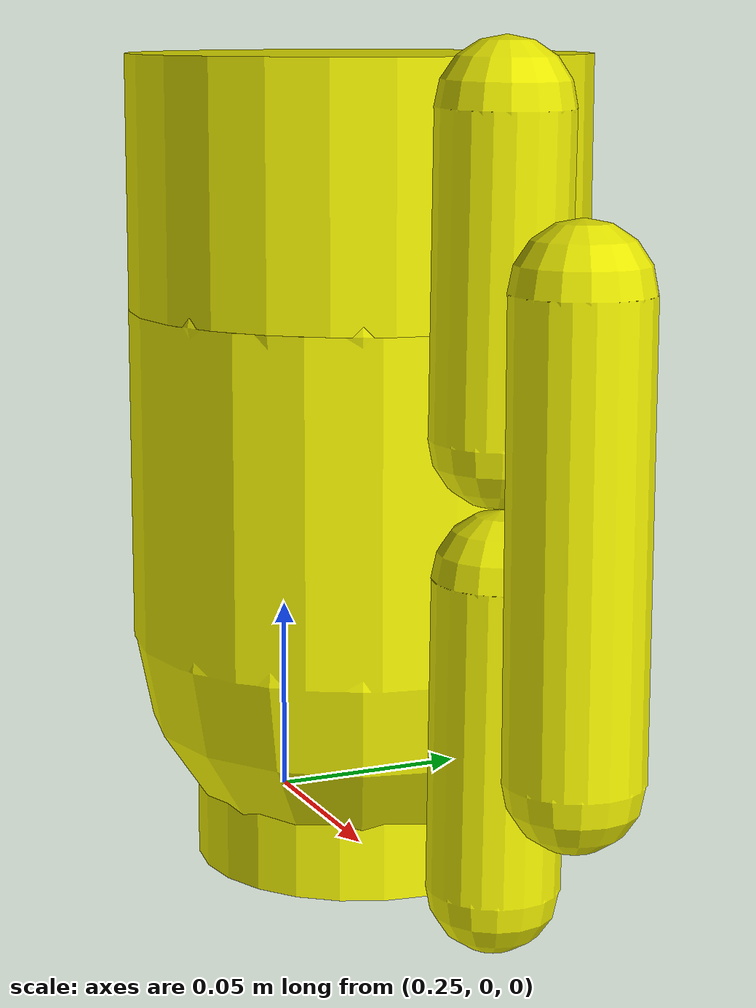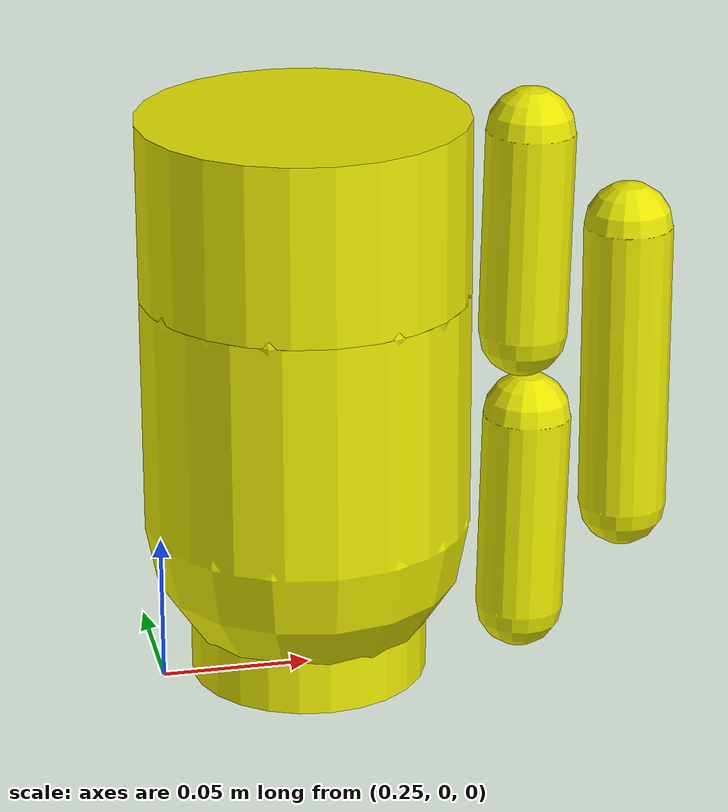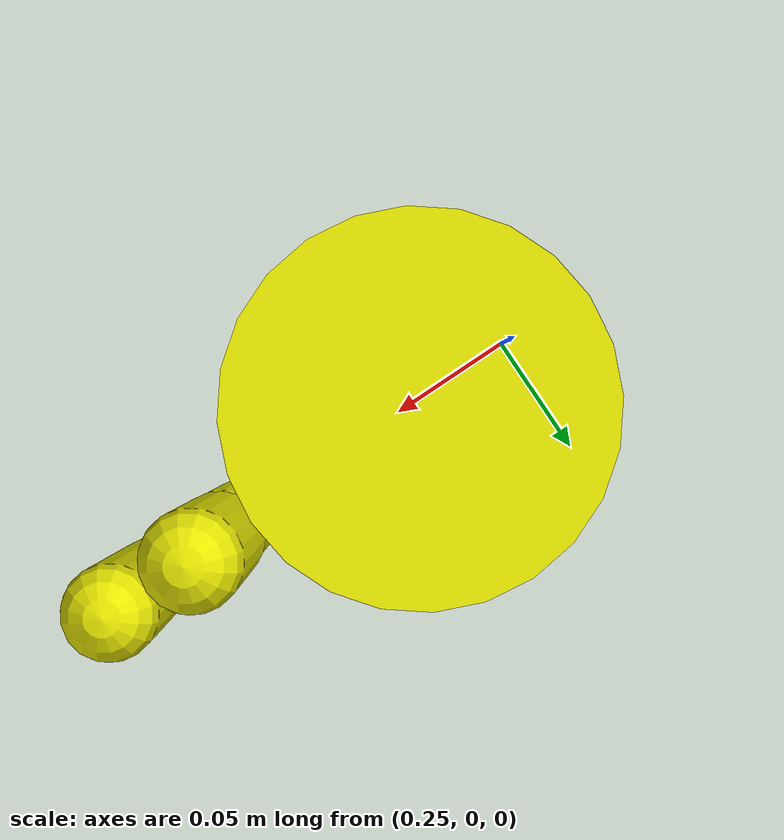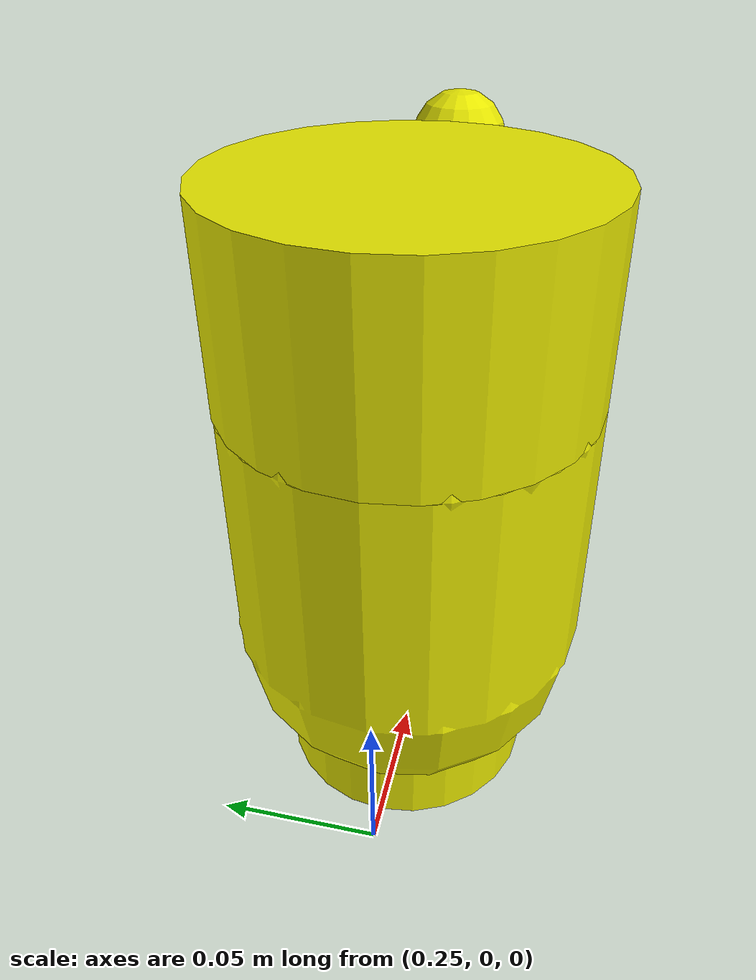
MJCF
<?xml version="1.0" encoding="utf-8"?>
<mujoco model="cup">
  <visual>
      <quality shadowsize="4048"/>
  </visual>

  <worldbody>
    <body>
      <body name="object" pos="0.3 0 0">
        <geom type="cylinder" size="0.0401 .010" rgba="0.9 0.9 0 1" pos="0 0 .010" group="0" mass="0.05"/>
        <geom type="capsule"  size="0.0551 .040" rgba="0.9 0.9 0 1" pos="0 0 .095" group="0" mass="0.05"/>
        <geom type="cylinder" size="0.0551 .030" rgba="0.9 0.9 0 1" pos="0 0 .165" group="0" mass="0.05"/>

        <geom type="capsule" size="0.015 .050" rgba="0.9 0.9 0 1" pos="0.11 0 .100" group="0" mass="0.05"/>
        <geom type="capsule" size="0.015 .035" rgba="0.9 0.9 0 1" pos="0.075 0 .05" euler='0 1.57 0' group="0" mass="0.05"/>
        <geom type="capsule" size="0.015 .035" rgba="0.9 0.9 0 1" pos="0.075 0 .15" euler='0 1.57 0' group="0" mass="0.05"/>

        <site name="handle" pos="0 0 .15"/>
      </body>
    </body>
  </worldbody>
</mujoco>
